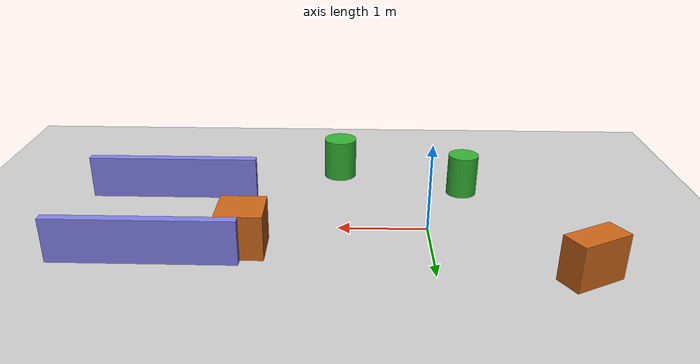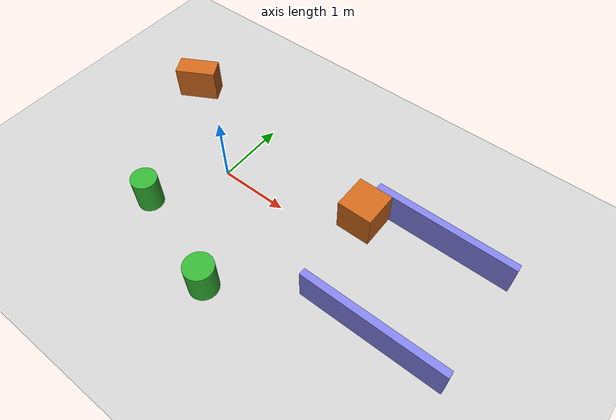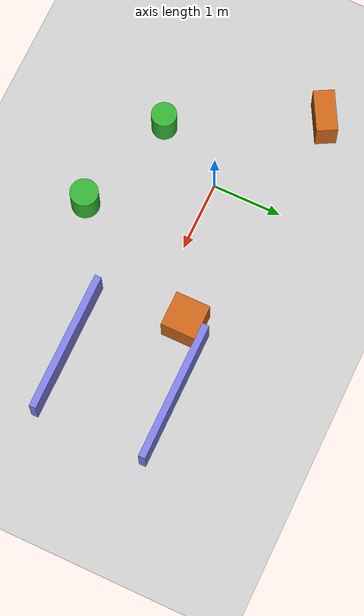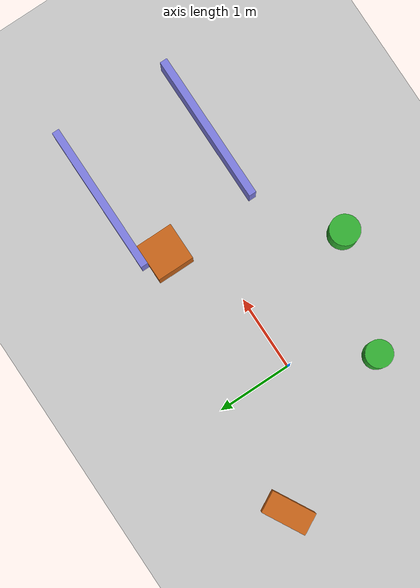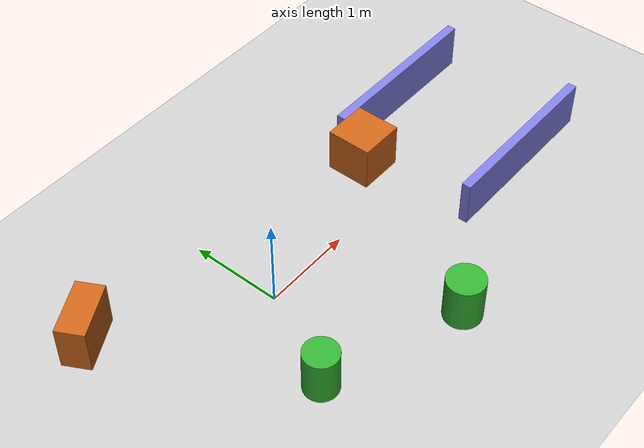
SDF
<?xml version="1.0"?>
<sdf version="1.6">
  <world name="dwa_demo_world">

    <!-- Lighting -->
    <include><uri>model://sun</uri></include>
    <include><uri>model://ground_plane</uri></include>

    <!-- Physics -->
    <physics type="ode">
      <real_time_update_rate>1000.0</real_time_update_rate>
      <max_step_size>0.001</max_step_size>
      <real_time_factor>1</real_time_factor>
    </physics>

    <!-- ── Static wall obstacles ──────────────────────────────────────── -->

    <!-- Box obstacle 1 -->
    <model name="box_1">
      <static>true</static>
      <pose>2.0 0.5 0.25 0 0 0</pose>
      <link name="link">
        <collision name="col"><geometry><box><size>0.5 0.5 0.5</size></box></geometry></collision>
        <visual name="vis">
          <geometry><box><size>0.5 0.5 0.5</size></box></geometry>
          <material><ambient>0.8 0.4 0.1 1</ambient><diffuse>0.8 0.4 0.1 1</diffuse></material>
        </visual>
      </link>
    </model>

    <!-- Box obstacle 2 -->
    <model name="box_2">
      <static>true</static>
      <pose>-1.5 1.0 0.25 0 0 0.5</pose>
      <link name="link">
        <collision name="col"><geometry><box><size>0.6 0.3 0.5</size></box></geometry></collision>
        <visual name="vis">
          <geometry><box><size>0.6 0.3 0.5</size></box></geometry>
          <material><ambient>0.8 0.4 0.1 1</ambient><diffuse>0.8 0.4 0.1 1</diffuse></material>
        </visual>
      </link>
    </model>

    <!-- Cylinder obstacle 1 -->
    <model name="cyl_1">
      <static>true</static>
      <pose>1.0 -1.5 0.25 0 0 0</pose>
      <link name="link">
        <collision name="col"><geometry><cylinder><radius>0.2</radius><length>0.5</length></cylinder></geometry></collision>
        <visual name="vis">
          <geometry><cylinder><radius>0.2</radius><length>0.5</length></cylinder></geometry>
          <material><ambient>0.2 0.7 0.2 1</ambient><diffuse>0.2 0.7 0.2 1</diffuse></material>
        </visual>
      </link>
    </model>

    <!-- Cylinder obstacle 2 -->
    <model name="cyl_2">
      <static>true</static>
      <pose>-0.5 -1.0 0.25 0 0 0</pose>
      <link name="link">
        <collision name="col"><geometry><cylinder><radius>0.18</radius><length>0.5</length></cylinder></geometry></collision>
        <visual name="vis">
          <geometry><cylinder><radius>0.18</radius><length>0.5</length></cylinder></geometry>
          <material><ambient>0.2 0.7 0.2 1</ambient><diffuse>0.2 0.7 0.2 1</diffuse></material>
        </visual>
      </link>
    </model>

    <!-- Narrow corridor walls -->
    <model name="wall_left">
      <static>true</static>
      <pose>3.0 0.8 0.25 0 0 0</pose>
      <link name="link">
        <collision name="col"><geometry><box><size>2.0 0.1 0.5</size></box></geometry></collision>
        <visual name="vis">
          <geometry><box><size>2.0 0.1 0.5</size></box></geometry>
          <material><ambient>0.5 0.5 0.9 1</ambient></material>
        </visual>
      </link>
    </model>

    <model name="wall_right">
      <static>true</static>
      <pose>3.0 -0.8 0.25 0 0 0</pose>
      <link name="link">
        <collision name="col"><geometry><box><size>2.0 0.1 0.5</size></box></geometry></collision>
        <visual name="vis">
          <geometry><box><size>2.0 0.1 0.5</size></box></geometry>
          <material><ambient>0.5 0.5 0.9 1</ambient></material>
        </visual>
      </link>
    </model>

  </world>
</sdf>
